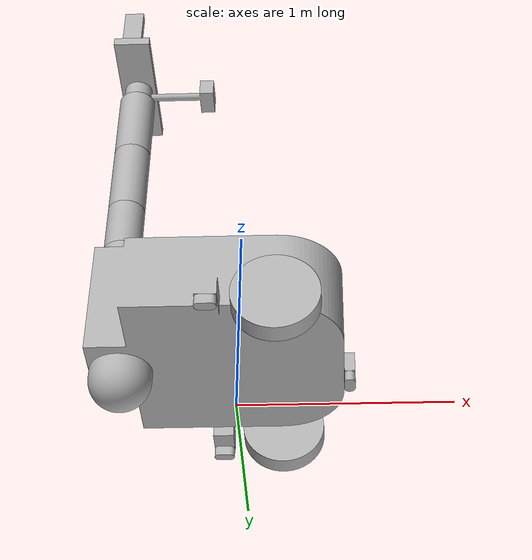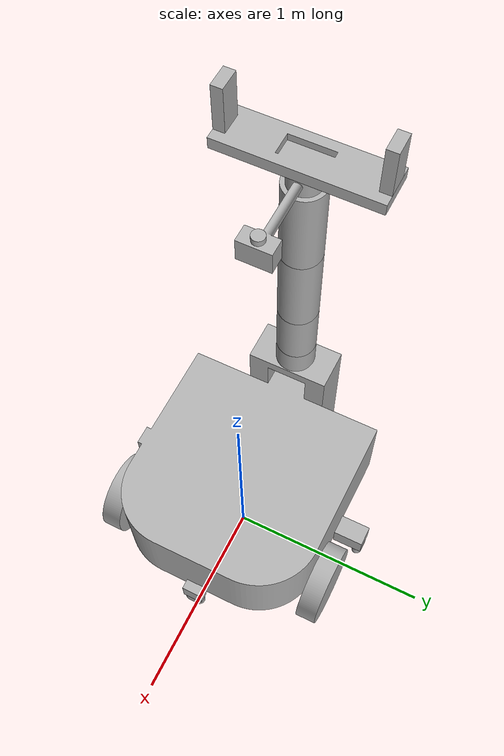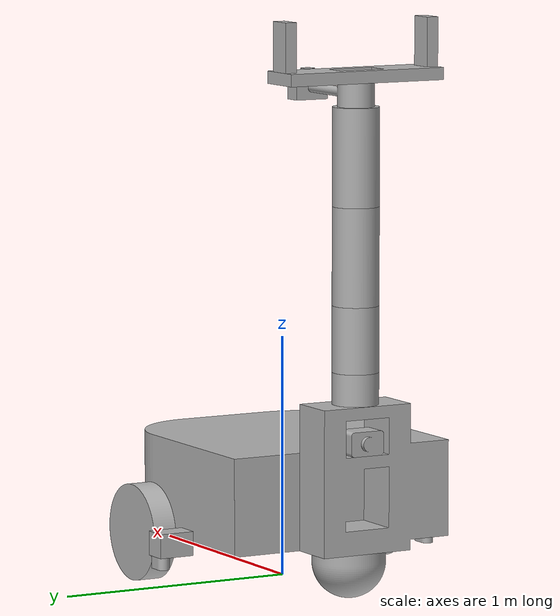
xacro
<?xml version="1.0" ?>
  <robot name="new_final_robot" xmlns:xacro="http://www.ros.org/wiki/xacro">

  <xacro:include filename="$(find new_final_robot_description)/urdf/materials.xacro" />
  <xacro:include filename="$(find new_final_robot_description)/urdf/new_final_robot.trans" />
  <xacro:include filename="$(find new_final_robot_description)/urdf/new_final_robot.gazebo" />

  <link name="base_footprint"/>

  <joint name="base_joint" type="fixed">
    <parent link="base_footprint"/>
    <child link="base_link"/>
    <origin rpy="0 0 0" xyz="0 0 0"/>
  </joint>

  <link name="base_link">
    <inertial>
      <origin xyz="-0.0617256247592863 -8.868711138370907e-17 0.40523748834083384" rpy="0 0 0"/>
      <mass value="3297.3820419522385"/>
      <inertia ixx="303.226541" iyy="370.831466" izz="569.568597" ixy="-0.0" iyz="-0.0" ixz="12.534123"/>
    </inertial>
    <visual>
      <origin xyz="0 0 0" rpy="0 0 0"/>
      <geometry>
        <mesh filename="package://new_final_robot_description/meshes/base_link.stl" scale="0.001 0.001 0.001"/>
      </geometry>
      <material name="silver"/>
    </visual>
    <collision>
      <origin xyz="0 0 0" rpy="0 0 0"/>
      <geometry>
        <mesh filename="package://new_final_robot_description/meshes/base_link.stl" scale="0.001 0.001 0.001"/>
      </geometry>
    </collision>
  </link>

  <link name="link1_1">
    <inertial>
      <origin xyz="-1.1102230246251565e-16 0.0 0.13500000000000012" rpy="0 0 0"/>
      <mass value="60.09391580428419"/>
      <inertia ixx="0.500657" iyy="0.500657" izz="0.271174" ixy="-0.0" iyz="-0.0" ixz="0.0"/>
    </inertial>
    <visual>
      <origin xyz="0.6 -0.0 -0.93" rpy="0 0 0"/>
      <geometry>
        <mesh filename="package://new_final_robot_description/meshes/link1_1.stl" scale="0.001 0.001 0.001"/>
      </geometry>
      <material name="silver"/>
    </visual>
    <collision>
      <origin xyz="0.6 -0.0 -0.93" rpy="0 0 0"/>
      <geometry>
        <mesh filename="package://new_final_robot_description/meshes/link1_1.stl" scale="0.001 0.001 0.001"/>
      </geometry>
    </collision>
  </link>

  <link name="link2_1">
    <inertial>
      <origin xyz="-1.1102230246251565e-16 0.0 0.19999999999999996" rpy="0 0 0"/>
      <mass value="89.02802341375434"/>
      <inertia ixx="1.38791" iyy="1.38791" izz="0.401739" ixy="-0.0" iyz="0.0" ixz="0.0"/>
    </inertial>
    <visual>
      <origin xyz="0.6 -0.0 -1.2" rpy="0 0 0"/>
      <geometry>
        <mesh filename="package://new_final_robot_description/meshes/link2_1.stl" scale="0.001 0.001 0.001"/>
      </geometry>
      <material name="silver"/>
    </visual>
    <collision>
      <origin xyz="0.6 -0.0 -1.2" rpy="0 0 0"/>
      <geometry>
        <mesh filename="package://new_final_robot_description/meshes/link2_1.stl" scale="0.001 0.001 0.001"/>
      </geometry>
    </collision>
  </link>

  <link name="link3_1">
    <inertial>
      <origin xyz="-1.1102230246251565e-16 0.0 0.19999999999999996" rpy="0 0 0"/>
      <mass value="89.02802341375434"/>
      <inertia ixx="1.38791" iyy="1.38791" izz="0.401739" ixy="-0.0" iyz="0.0" ixz="-0.0"/>
    </inertial>
    <visual>
      <origin xyz="0.6 -0.0 -1.6" rpy="0 0 0"/>
      <geometry>
        <mesh filename="package://new_final_robot_description/meshes/link3_1.stl" scale="0.001 0.001 0.001"/>
      </geometry>
      <material name="silver"/>
    </visual>
    <collision>
      <origin xyz="0.6 -0.0 -1.6" rpy="0 0 0"/>
      <geometry>
        <mesh filename="package://new_final_robot_description/meshes/link3_1.stl" scale="0.001 0.001 0.001"/>
      </geometry>
    </collision>
  </link>

  <link name="link0_1">
    <inertial>
      <origin xyz="0.0 0.0 0.06500000000000006" rpy="0 0 0"/>
      <mass value="28.934107609470168"/>
      <inertia ixx="0.106031" iyy="0.106031" izz="0.130565" ixy="-0.0" iyz="-0.0" ixz="0.0"/>
    </inertial>
    <visual>
      <origin xyz="0.6 -0.0 -0.8" rpy="0 0 0"/>
      <geometry>
        <mesh filename="package://new_final_robot_description/meshes/link0_1.stl" scale="0.001 0.001 0.001"/>
      </geometry>
      <material name="silver"/>
    </visual>
    <collision>
      <origin xyz="0.6 -0.0 -0.8" rpy="0 0 0"/>
      <geometry>
        <mesh filename="package://new_final_robot_description/meshes/link0_1.stl" scale="0.001 0.001 0.001"/>
      </geometry>
    </collision>
  </link>

  <link name="right_front_1">
    <inertial>
      <origin xyz="8.326672684688674e-17 -0.050000000000000044 0.0" rpy="0 0 0"/>
      <mass value="98.64600932271955"/>
      <inertia ixx="1.068665" iyy="1.97292" izz="1.068665" ixy="-0.0" iyz="0.0" ixz="0.0"/>
    </inertial>
    <visual>
      <origin xyz="-0.2 0.5 -0.2" rpy="0 0 0"/>
      <geometry>
        <mesh filename="package://new_final_robot_description/meshes/right_front_1.stl" scale="0.001 0.001 0.001"/>
      </geometry>
      <material name="silver"/>
    </visual>
    <collision>
      <origin xyz="-0.2 0.5 -0.2" rpy="0 0 0"/>
      <geometry>
        <mesh filename="package://new_final_robot_description/meshes/right_front_1.stl" scale="0.001 0.001 0.001"/>
      </geometry>
    </collision>
  </link>

  <link name="left_front_1">
    <inertial>
      <origin xyz="5.551115123125783e-17 0.050000000000000044 -5.551115123125783e-17" rpy="0 0 0"/>
      <mass value="98.64600932271955"/>
      <inertia ixx="1.068665" iyy="1.97292" izz="1.068665" ixy="0.0" iyz="0.0" ixz="0.0"/>
    </inertial>
    <visual>
      <origin xyz="-0.2 -0.5 -0.2" rpy="0 0 0"/>
      <geometry>
        <mesh filename="package://new_final_robot_description/meshes/left_front_1.stl" scale="0.001 0.001 0.001"/>
      </geometry>
      <material name="silver"/>
    </visual>
    <collision>
      <origin xyz="-0.2 -0.5 -0.2" rpy="0 0 0"/>
      <geometry>
        <mesh filename="package://new_final_robot_description/meshes/left_front_1.stl" scale="0.001 0.001 0.001"/>
      </geometry>
    </collision>
  </link>

  <link name="lidar_1">
    <inertial>
      <origin xyz="0.0 1.0188144251725274e-17 -0.024999999999999967" rpy="0 0 0"/>
      <mass value="1.7519219478337453"/>
      <inertia ixx="0.00158" iyy="0.00069" izz="0.00154" ixy="0.0" iyz="0.0" ixz="-0.0"/>
    </inertial>
    <visual>
      <origin xyz="-0.525 -0.0 -0.15" rpy="0 0 0"/>
      <geometry>
        <mesh filename="package://new_final_robot_description/meshes/lidar_1.stl" scale="0.001 0.001 0.001"/>
      </geometry>
      <material name="silver"/>
    </visual>
    <collision>
      <origin xyz="-0.525 -0.0 -0.15" rpy="0 0 0"/>
      <geometry>
        <mesh filename="package://new_final_robot_description/meshes/lidar_1.stl" scale="0.001 0.001 0.001"/>
      </geometry>
    </collision>
  </link>

  <link name="camera_1">
    <inertial>
      <origin xyz="0.04779284158635222 1.3514947432424196e-19 0.050000000000000044" rpy="0 0 0"/>
      <mass value="12.067290844392534"/>
      <inertia ixx="0.03098" iyy="0.020821" izz="0.032639" ixy="0.0" iyz="0.0" ixz="0.0"/>
    </inertial>
    <visual>
      <origin xyz="0.7 -0.0 -0.6" rpy="0 0 0"/>
      <geometry>
        <mesh filename="package://new_final_robot_description/meshes/camera_1.stl" scale="0.001 0.001 0.001"/>
      </geometry>
      <material name="silver"/>
    </visual>
    <collision>
      <origin xyz="0.7 -0.0 -0.6" rpy="0 0 0"/>
      <geometry>
        <mesh filename="package://new_final_robot_description/meshes/camera_1.stl" scale="0.001 0.001 0.001"/>
      </geometry>
    </collision>
  </link>

  <link name="right_gripper_1">
    <inertial>
      <origin xyz="0.0 0.024999999999999967 0.10000000000000009" rpy="0 0 0"/>
      <mass value="7.85"/>
      <inertia ixx="0.027802" iyy="0.032708" izz="0.008177" ixy="0.0" iyz="-0.0" ixz="0.0"/>
    </inertial>
    <visual>
      <origin xyz="0.6 0.35 -2.15" rpy="0 0 0"/>
      <geometry>
        <mesh filename="package://new_final_robot_description/meshes/right_gripper_1.stl" scale="0.001 0.001 0.001"/>
      </geometry>
      <material name="silver"/>
    </visual>
    <collision>
      <origin xyz="0.6 0.35 -2.15" rpy="0 0 0"/>
      <geometry>
        <mesh filename="package://new_final_robot_description/meshes/right_gripper_1.stl" scale="0.001 0.001 0.001"/>
      </geometry>
    </collision>
  </link>

  <link name="left_gripper_1">
    <inertial>
      <origin xyz="0.0 -0.024999999999999967 0.10000000000000009" rpy="0 0 0"/>
      <mass value="7.85"/>
      <inertia ixx="0.027802" iyy="0.032708" izz="0.008177" ixy="-0.0" iyz="0.0" ixz="0.0"/>
    </inertial>
    <visual>
      <origin xyz="0.6 -0.35 -2.15" rpy="0 0 0"/>
      <geometry>
        <mesh filename="package://new_final_robot_description/meshes/left_gripper_1.stl" scale="0.001 0.001 0.001"/>
      </geometry>
      <material name="silver"/>
    </visual>
    <collision>
      <origin xyz="0.6 -0.35 -2.15" rpy="0 0 0"/>
      <geometry>
        <mesh filename="package://new_final_robot_description/meshes/left_gripper_1.stl" scale="0.001 0.001 0.001"/>
      </geometry>
    </collision>
  </link>

  <link name="lidar3_1">
    <inertial>
      <origin xyz="2.7755575615628914e-17 -0.025000000000000133 -0.02500000000000001" rpy="0 0 0"/>
      <mass value="1.7519219478337458"/>
      <inertia ixx="0.00069" iyy="0.00158" izz="0.00154" ixy="0.0" iyz="-0.0" ixz="0.0"/>
    </inertial>
    <visual>
      <origin xyz="0.1 -0.65 -0.15" rpy="0 0 0"/>
      <geometry>
        <mesh filename="package://new_final_robot_description/meshes/lidar3_1.stl" scale="0.001 0.001 0.001"/>
      </geometry>
      <material name="silver"/>
    </visual>
    <collision>
      <origin xyz="0.1 -0.65 -0.15" rpy="0 0 0"/>
      <geometry>
        <mesh filename="package://new_final_robot_description/meshes/lidar3_1.stl" scale="0.001 0.001 0.001"/>
      </geometry>
    </collision>
  </link>

  <link name="ball_wheel_1">
    <inertial>
      <origin xyz="0.15000000000000013 5.4897996801157066e-17 -0.0791666666666667" rpy="0 0 0"/>
      <mass value="83.2325703660445"/>
      <inertia ixx="0.607771" iyy="0.607771" izz="0.811518" ixy="-0.0" iyz="-0.0" ixz="0.0"/>
    </inertial>
    <visual>
      <origin xyz="0.7 -0.0 -0.2" rpy="0 0 0"/>
      <geometry>
        <mesh filename="package://new_final_robot_description/meshes/ball_wheel_1.stl" scale="0.001 0.001 0.001"/>
      </geometry>
      <material name="silver"/>
    </visual>
    <collision>
      <origin xyz="0.7 -0.0 -0.2" rpy="0 0 0"/>
      <geometry>
        <mesh filename="package://new_final_robot_description/meshes/ball_wheel_1.stl" scale="0.001 0.001 0.001"/>
      </geometry>
    </collision>
  </link>

  <link name="lidar2_1">
    <inertial>
      <origin xyz="0.0 0.02499999999999991 -0.024999999999999967" rpy="0 0 0"/>
      <mass value="1.7519219478337456"/>
      <inertia ixx="0.00069" iyy="0.00158" izz="0.00154" ixy="0.0" iyz="-0.0" ixz="-0.0"/>
    </inertial>
    <visual>
      <origin xyz="0.1 0.65 -0.15" rpy="0 0 0"/>
      <geometry>
        <mesh filename="package://new_final_robot_description/meshes/lidar2_1.stl" scale="0.001 0.001 0.001"/>
      </geometry>
      <material name="silver"/>
    </visual>
    <collision>
      <origin xyz="0.1 0.65 -0.15" rpy="0 0 0"/>
      <geometry>
        <mesh filename="package://new_final_robot_description/meshes/lidar2_1.stl" scale="0.001 0.001 0.001"/>
      </geometry>
    </collision>
  </link>

  <link name="link5_1">
    <inertial>
      <origin xyz="-1.1102230246251565e-16 0.0 0.024008264462810125" rpy="0 0 0"/>
      <mass value="47.49249999999999"/>
      <inertia ixx="2.125907" iyy="0.163122" izz="2.26902" ixy="0.0" iyz="0.0" ixz="-0.0"/>
    </inertial>
    <visual>
      <origin xyz="0.6 -0.0 -2.1" rpy="0 0 0"/>
      <geometry>
        <mesh filename="package://new_final_robot_description/meshes/link5_1.stl" scale="0.001 0.001 0.001"/>
      </geometry>
      <material name="silver"/>
    </visual>
    <collision>
      <origin xyz="0.6 -0.0 -2.1" rpy="0 0 0"/>
      <geometry>
        <mesh filename="package://new_final_robot_description/meshes/link5_1.stl" scale="0.001 0.001 0.001"/>
      </geometry>
    </collision>
  </link>

  <link name="link_4_1">
    <inertial>
      <origin xyz="0.1557284240502928 0.0009486975328736953 0.05019696840713328" rpy="0 0 0"/>
      <mass value="25.250485727550025"/>
      <inertia ixx="0.054321" iyy="0.870172" izz="0.886142" ixy="-0.00454" iyz="-6e-06" ixz="-0.000944"/>
    </inertial>
    <visual>
      <origin xyz="0.6 -0.0 -2.0" rpy="0 0 0"/>
      <geometry>
        <mesh filename="package://new_final_robot_description/meshes/link_4_1.stl" scale="0.001 0.001 0.001"/>
      </geometry>
      <material name="silver"/>
    </visual>
    <collision>
      <origin xyz="0.6 -0.0 -2.0" rpy="0 0 0"/>
      <geometry>
        <mesh filename="package://new_final_robot_description/meshes/link_4_1.stl" scale="0.001 0.001 0.001"/>
      </geometry>
    </collision>
  </link>

  <link name="camera2_1">
    <inertial>
      <origin xyz="0.0 -1.6373171699782946e-07 0.012500244267079186" rpy="0 0 0"/>
      <mass value="0.47440546645918674"/>
      <inertia ixx="0.000116" iyy="0.000116" izz="0.000183" ixy="0.0" iyz="-0.0" ixz="-0.0"/>
    </inertial>
    <visual>
      <origin xyz="0.2125 -0.002103 -2.100874" rpy="0 0 0"/>
      <geometry>
        <mesh filename="package://new_final_robot_description/meshes/camera2_1.stl" scale="0.001 0.001 0.001"/>
      </geometry>
      <material name="silver"/>
    </visual>
    <collision>
      <origin xyz="0.2125 -0.002103 -2.100874" rpy="0 0 0"/>
      <geometry>
        <mesh filename="package://new_final_robot_description/meshes/camera2_1.stl" scale="0.001 0.001 0.001"/>
      </geometry>
    </collision>
  </link>

  <joint name="joint0" type="revolute">
    <origin xyz="-0.6 0.0 0.8" rpy="0 0 0"/>
    <parent link="base_link"/>
    <child link="link0_1"/>
    <axis xyz="0.0 0.0 1.0"/>
    <limit upper="6.28" lower="-6.28" effort="300" velocity="1"/>
    <dynamics damping="50" friction="1"/>
  </joint>

  <joint name="joint1" type="revolute">
    <origin xyz="0.0 0.0 0.13" rpy="0 0 0"/>
    <parent link="link0_1"/>
    <child link="link1_1"/>
    <axis xyz="0.0 1.0 0.0"/>
    <limit upper="2" lower="-2" effort="300" velocity="1"/>
    <dynamics damping="50" friction="1"/>
  </joint>

  <joint name="joint2" type="revolute">
    <origin xyz="0.0 0.0 0.27" rpy="0 0 0"/>
    <parent link="link1_1"/>
    <child link="link2_1"/>
    <axis xyz="0.0 1.0 0.0"/>
    <limit upper="0.1" lower="-2.0944" effort="300" velocity="1"/>
    <dynamics damping="50" friction="1"/>
  </joint>

  <joint name="joint3" type="revolute">
    <origin xyz="0.0 0.0 0.4" rpy="0 0 0"/>
    <parent link="link2_1"/>
    <child link="link3_1"/>
      <axis xyz="0.0 1.0 0.0"/>
    <limit upper="0.1" lower="-2.0944" effort="300" velocity="1"/>
    <dynamics damping="50" friction="1"/>
  </joint>

  <joint name="joint4" type="revolute">
    <origin xyz="0.0 0.0 0.4" rpy="0 0 0"/>
    <parent link="link3_1"/>
    <child link="link_4_1"/>
    <axis xyz="0.0 1.0 0.0"/>
    <limit upper="0.1" lower="-1.5708" effort="300" velocity="1"/>
    <dynamics damping="50" friction="1"/>
  </joint>

  <joint name="joint5" type="revolute">
    <origin xyz="0.0 0.0 0.1" rpy="0 0 0"/>
    <parent link="link_4_1"/>
    <child link="link5_1"/>
    <axis xyz="0.0 0.0 1.0"/>
    <limit lower="0" upper="6.28" effort="300" velocity="1" />
    <dynamics damping="50" friction="1"/>
  </joint>

  <link name="grasping_frame"/>

  <joint name="grasping_frame_joint" type="fixed">
    <parent link="link5_1"/>
    <child link="grasping_frame"/>
    <origin xyz="0 0 0" rpy="0 0 0"/>
  </joint>

  <joint name="finger_joint1" type="prismatic">
    <origin xyz="0.0 -0.35 0.05" rpy="0 0 0"/>
    <parent link="link5_1"/>
    <child link="right_gripper_1"/>
    <axis xyz="0 1 0" />
    <limit effort="300" lower="0" upper="0.20" velocity="1"/>
    <dynamics damping="50" friction="1"/>
  </joint>

  <joint name="finger_joint2" type="prismatic">
    <origin xyz="0.0 0.35 0.05" rpy="0 0 0"/>
    <parent link="link5_1"/>
    <child link="left_gripper_1"/>
    <axis xyz="0 1 0" />
    <limit effort="300" lower="-0.20" upper="0" velocity="1"/>
    <dynamics damping="50" friction="1"/>
  </joint>

  <joint name="right_front_joint" type="continuous">
    <origin xyz="0.2 -0.5 0.2" rpy="0 0 0"/>
    <parent link="base_link"/>
    <child link="right_front_1"/>
    <axis xyz="0.0 1.0 0.0"/>
  </joint>

  <joint name="left_front_joint" type="continuous">
    <origin xyz="0.2 0.5 0.2" rpy="0 0 0"/>
    <parent link="base_link"/>
    <child link="left_front_1"/>
    <axis xyz="0.0 1.0 0.0"/>
  </joint>

  <joint name="lidar_joint" type="fixed">
    <origin xyz="0.525 0.0 0.15" rpy="0 0 0"/>
    <parent link="base_link"/>
    <child link="lidar_1"/>
  </joint>

  <joint name="camera_joint" type="fixed">
    <origin xyz="-0.7 0.0 0.6" rpy="0 0 0"/>
    <parent link="base_link"/>
    <child link="camera_1"/>
  </joint>

  <joint name="lidar2_joint" type="fixed">
    <origin xyz="-0.1 0.65 0.15" rpy="0 0 0"/>
    <parent link="base_link"/>
    <child link="lidar3_1"/>
  </joint>

  <joint name="ball_wheel_joint" type="fixed">
    <origin xyz="-0.7 0.0 0.2" rpy="0 0 0"/>
    <parent link="base_link"/>
    <child link="ball_wheel_1"/>
  </joint>

  <joint name="lidar3_joint" type="fixed">
    <origin xyz="-0.1 -0.65 0.15" rpy="0 0 0"/>
    <parent link="base_link"/>
    <child link="lidar2_1"/>
  </joint>

  <joint name="camera2_joint" type="fixed">
    <origin xyz="0.3875 0.002103 0.100874" rpy="0 0 0"/>
    <parent link="link_4_1"/>
    <child link="camera2_1"/>
  </joint>

</robot>

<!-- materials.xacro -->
<robot name="new_final_robot" xmlns:xacro="http://www.ros.org/wiki/xacro" >

<material name="silver">
  <color rgba="0.700 0.700 0.700 1.000"/>
</material>

</robot>

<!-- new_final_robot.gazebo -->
<robot name="finalbot" xmlns:xacro="http://www.ros.org/wiki/xacro" >

  <xacro:property name="body_color" value="Gazebo/Silver" />

  <gazebo>
      <plugin name="gazebo_ros_control" filename="libgazebo_ros_control.so">
          <robotNamespace>/arm</robotNamespace>
      </plugin>
  </gazebo>
  <gazebo reference="base_link">
    <material>${body_color}</material>
    <mu1>0.2</mu1>
    <mu2>0.2</mu2>
    <selfCollide>true</selfCollide>
    <gravity>true</gravity>
  </gazebo>

  <gazebo reference="link1_1">
    <material>${body_color}</material>
    <selfCollide>true</selfCollide>
  </gazebo>

  <gazebo reference="link2_1">
    <material>${body_color}</material>
    <selfCollide>true</selfCollide>
  </gazebo>

  <gazebo reference="link3_1">
    <material>${body_color}</material>
    <selfCollide>true</selfCollide>
  </gazebo>

  <gazebo reference="link4_1">
    <material>${body_color}</material>
    <selfCollide>true</selfCollide>
  </gazebo>

  <gazebo reference="link0_1">
    <material>${body_color}</material>
    <selfCollide>true</selfCollide>
  </gazebo>

  <gazebo reference="right_front_1">
    <material>${body_color}</material>
    <mu1>1000000</mu1>
    <mu2>1000000</mu2>
    <selfCollide>true</selfCollide>
  </gazebo>

  <gazebo reference="left_front_1">
    <material>${body_color}</material>
    <mu1>1000000</mu1>
    <mu2>1000000</mu2>
    <selfCollide>true</selfCollide>
  </gazebo>

  <gazebo reference="lidar_1">
    <material>${body_color}</material>
    <mu1>0.2</mu1>
    <mu2>0.2</mu2>
    <selfCollide>true</selfCollide>
  </gazebo>

  <gazebo reference="camera_1">
    <material>${body_color}</material>
    <mu1>0.2</mu1>
    <mu2>0.2</mu2>
    <selfCollide>true</selfCollide>
  </gazebo>

  <gazebo reference="link5_1">
    <material>${body_color}</material>
    <mu1>0.2</mu1>
    <mu2>0.2</mu2>
    <selfCollide>true</selfCollide>
  </gazebo>

  <gazebo reference="camera2_1">
    <material>${body_color}</material>
    <mu1>0.2</mu1>
    <mu2>0.2</mu2>
    <selfCollide>true</selfCollide>
  </gazebo>

  <gazebo reference="right_gripper_1">
    <material>${body_color}</material>
    <mu1>0.2</mu1>
    <mu2>0.2</mu2>
    <selfCollide>false</selfCollide>
  </gazebo>

  <gazebo reference="left_gripper_1">
    <material>${body_color}</material>
    <mu1>0.2</mu1>
    <mu2>0.2</mu2>
    <selfCollide>false</selfCollide>
  </gazebo>

  <gazebo reference="lidar3_1">
    <material>${body_color}</material>
    <mu1>0.2</mu1>
    <mu2>0.2</mu2>
    <selfCollide>true</selfCollide>
  </gazebo>

  <gazebo reference="ball_wheel_1">
    <material>${body_color}</material>
    <mu1>0.2</mu1>
    <mu2>0.2</mu2>
    <selfCollide>true</selfCollide>
  </gazebo>

  <gazebo reference="lidar2_1">
    <material>${body_color}</material>
    <mu1>0.2</mu1>
    <mu2>0.2</mu2>
    <selfCollide>true</selfCollide>
  </gazebo>
  <gazebo>
    <plugin name="mybot_controller" filename="libgazebo_ros_diff_drive.so">
      <commandTopic>cmd_vel</commandTopic>
      <odometryTopic>odom</odometryTopic>
      <odometryFrame>odom</odometryFrame>
      <odometrySource>world</odometrySource>
      <publishOdomTF>true</publishOdomTF>
      <robotBaseFrame>base_footprint</robotBaseFrame>
      <publishWheelTF>false</publishWheelTF>
      <publishTf>true</publishTf>
      <publishWheelJointState>false</publishWheelJointState>
      <legacyMode>false</legacyMode>
      <updateRate>30</updateRate>
      <leftJoint>left_front_joint</leftJoint>
      <rightJoint>right_front_joint</rightJoint>
      <wheelSeparation>1</wheelSeparation>
      <wheelDiameter>0.4</wheelDiameter>
      <wheelAcceleration>10</wheelAcceleration>
      <wheelTorque>1500</wheelTorque>
      <rosDebugLevel>na</rosDebugLevel>
    </plugin>
  </gazebo>

  <gazebo reference="camera_1">
    <sensor type="camera" name="csi Camera">
      <always_on>true</always_on>
      <visualize>true</visualize>
      <camera>
      <pose>0 0 0 0 0.2 3.14159 </pose>
          <horizontal_fov>1.085595</horizontal_fov>
          <image>
              <width>640</width>
              <height>480</height>
              <format>R8G8B8</format>
          </image>
          <clip>
              <near>0.03</near>
              <far>100</far>
          </clip>
      </camera>
      <plugin name="camera_controller" filename="libgazebo_ros_camera.so">
        <alwaysOn>true</alwaysOn>
        <updateRate>30.0</updateRate>
        <cameraName>/</cameraName>
        <frameName>camera_1</frameName>
        <imageTopicName>image_raw</imageTopicName>
        <cameraInfoTopicName>camera_info</cameraInfoTopicName>
        <hackBaseline>0.07</hackBaseline>
        <distortionK1>0.0</distortionK1>
        <distortionK2>0.0</distortionK2>
        <distortionK3>0.0</distortionK3>
        <distortionT1>0.0</distortionT1>
        <distortionT2>0.0</distortionT2>
      </plugin>
    </sensor>
  </gazebo>

  <gazebo reference="camera2_1">
    <sensor type="depth" name="camera_with_depth">
      <always_on>true</always_on>
      <visualize>true</visualize>
      <camera>
        <pose>0 0 0 0 -1.570795 0</pose>
        <horizontal_fov>1.5</horizontal_fov>
        <image>
          <width>640</width>
          <height>480</height>
          <format>R8G8B8</format>  <!-- RGB 彩色圖像 -->
        </image>
        <clip>
          <near>0.03</near>
          <far>100</far>
        </clip>
      </camera>
      <plugin name="camera_controller" filename="libgazebo_ros_openni_kinect.so">
        <baseline>0.2</baseline>
        <alwaysOn>true</alwaysOn>
        <updateRate>10.0</updateRate>  <!-- 控制帧率，设置为0意味着使用上面的30Hz -->

        <!-- RGB 图像 -->
        <cameraName>camera2_1</cameraName>
        <imageTopicName>/camera/color/image_raw</imageTopicName>
        <cameraInfoTopicName>/camera/color/camera_info</cameraInfoTopicName>

        <!-- 深度图像 -->
        <depthImageTopicName>/camera/depth/image_raw</depthImageTopicName>
        <depthImageCameraInfoTopicName>/camera/depth/camera_info</depthImageCameraInfoTopicName>

        <!-- 点云 -->
        <pointCloudTopicName>/camera/depth/points</pointCloudTopicName>

        <!-- 相机的frame_id -->
        <frameName>camera2_1</frameName>

        <!-- 点云的最小和最大范围 -->
        <pointCloudCutoff>0.5</pointCloudCutoff>
        <pointCloudCutoffMax>3.0</pointCloudCutoffMax>

        <!-- 畸变参数 (设置为零表示无畸变) -->
        <distortionK1>0.0</distortionK1>
        <distortionK2>0.0</distortionK2>
        <distortionK3>0.0</distortionK3>
        <distortionT1>0.0</distortionT1>
        <distortionT2>0.0</distortionT2>
      </plugin>
    </sensor>
  </gazebo>

  <gazebo reference="lidar_1">
    <material>Gazebo/FlatBlack</material>
    <sensor type="ray" name="rplidar_sensor1">
      <pose>-0.55 -0.0 -0.15 0 0 0</pose>
      <visualize>true</visualize>
      <update_rate>30</update_rate>
      <ray>
        <scan>
          <horizontal>
            <samples>720</samples>
            <resolution>0.5</resolution>
            <min_angle>-1.570795</min_angle>
            <max_angle>1.570795</max_angle>
          </horizontal>
        </scan>
        <range>
          <min>0.120</min>
          <max>6.0</max>
          <resolution>0.015</resolution>
        </range>
        <noise>
          <type>gaussian</type>
          <mean>0.0</mean>
          <stddev>0.01</stddev>
        </noise>
      </ray>
      <plugin name="gazebo_ros_rplidar_controller" filename="libgazebo_ros_laser.so">
        <topicName>scan1</topicName>
        <frameName>lidar_1</frameName>
      </plugin>
    </sensor>
  </gazebo>

  <gazebo reference="lidar2_1">
    <material>Gazebo/FlatBlack</material>
    <sensor type="ray" name="rplidar_sensor2">
      <pose>0.1 0.65 -0.15 0 0 0</pose>
      <visualize>true</visualize>
      <update_rate>30</update_rate>
      <ray>
        <scan>
          <horizontal>
            <samples>720</samples>
            <resolution>0.5</resolution>
            <min_angle>-1</min_angle>
            <max_angle>-3.6</max_angle>
          </horizontal>
        </scan>
        <range>
          <min>0.120</min>
          <max>6.0</max>
          <resolution>0.015</resolution>
        </range>
        <noise>
          <type>gaussian</type>
          <mean>0.0</mean>
          <stddev>0.01</stddev>
        </noise>
      </ray>
      <plugin name="gazebo_ros_rplidar_controller" filename="libgazebo_ros_laser.so">
        <topicName>scan2</topicName>
        <frameName>lidar2_1</frameName>
      </plugin>
    </sensor>
  </gazebo>

  <gazebo reference="lidar3_1">
    <material>Gazebo/FlatBlack</material>
    <sensor type="ray" name="rplidar_sensor3">
      <pose>0.1 -0.65 -0.15 0 0 0</pose>
      <visualize>true</visualize>
      <update_rate>30</update_rate>
      <ray>
        <scan>
          <horizontal>
            <samples>720</samples>
            <resolution>0.5</resolution>
            <min_angle>1</min_angle>
            <max_angle>3.6</max_angle>
          </horizontal>
        </scan>
        <range>
          <min>0.120</min>
          <max>6.0</max>
          <resolution>0.015</resolution>
        </range>
        <noise>
          <type>gaussian</type>
          <mean>0.0</mean>
          <stddev>0.01</stddev>
        </noise>
      </ray>
      <plugin name="gazebo_ros_rplidar_controller" filename="libgazebo_ros_laser.so">
        <topicName>scan3</topicName>
        <frameName>lidar3_1</frameName>
      </plugin>
    </sensor>
  </gazebo>

  <gazebo>
    <plugin name="gazebo_grasp_fix" filename="libgazebo_grasp_fix.so">
        <arm>
            <!-- 机械臂名称,注意确保唯一性 -->
            <arm_name>arm_gripper</arm_name>

            <!--与夹持器末端 link 相连的 link 、,可以配置多个-->
            <palm_link>link5_1</palm_link>

            <!--直接与抓取物体接触的 link ,与 palm_link 之间不能存在其他的 link-->
            <gripper_link>right_gripper_1</gripper_link>
            <gripper_link>left_gripper_1</gripper_link>
        </arm>

        <!--是否是相反力的夹⻆判断阈值 -->
        <forces_angle_tolerance>90</forces_angle_tolerance>

        <!--检查频率,需要小于 gazebo 的刷新频率-->
        <update_rate>50</update_rate>

        <!-- 检测阈值:在一个 update_rate 内,物体与夹爪之间的碰触次数-->
        <grip_count_threshold>1</grip_count_threshold>

        <!-- 最大记数数目，一般为grip_count_threshold的两倍-->
        <max_grip_count>2</max_grip_count>

        <!--释放物体时夹爪与物体的距离-->
        <release_tolerance>0.005</release_tolerance>

        <!-- 当一个对象被附加时，与它的碰撞可能被禁用，以防机器人仍然保持抖动-->
        <disable_collisions_on_attach>false</disable_collisions_on_attach>
        <contact_topic>__default_topic__</contact_topic>
    </plugin>
  </gazebo>
</robot>
